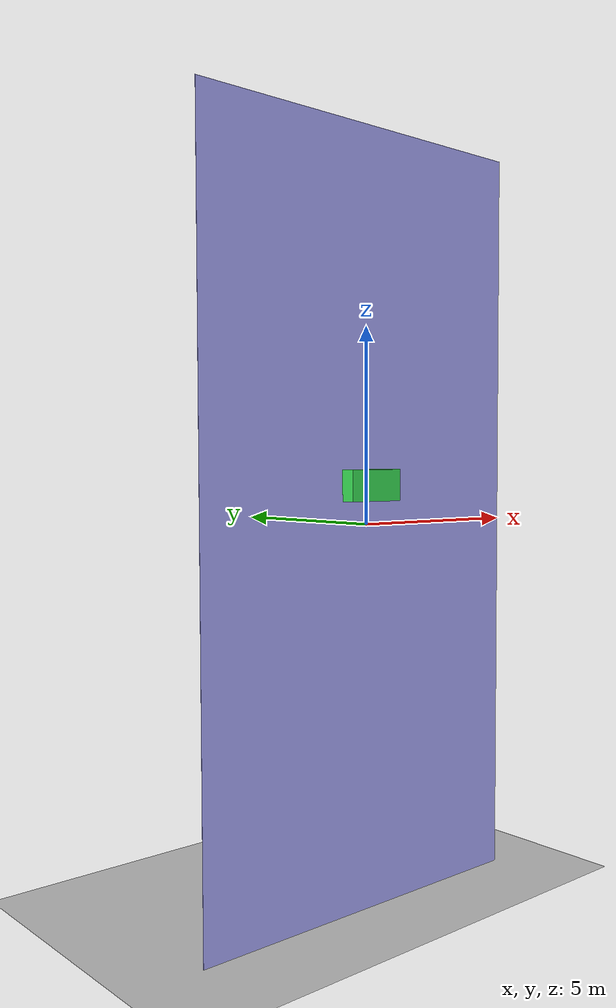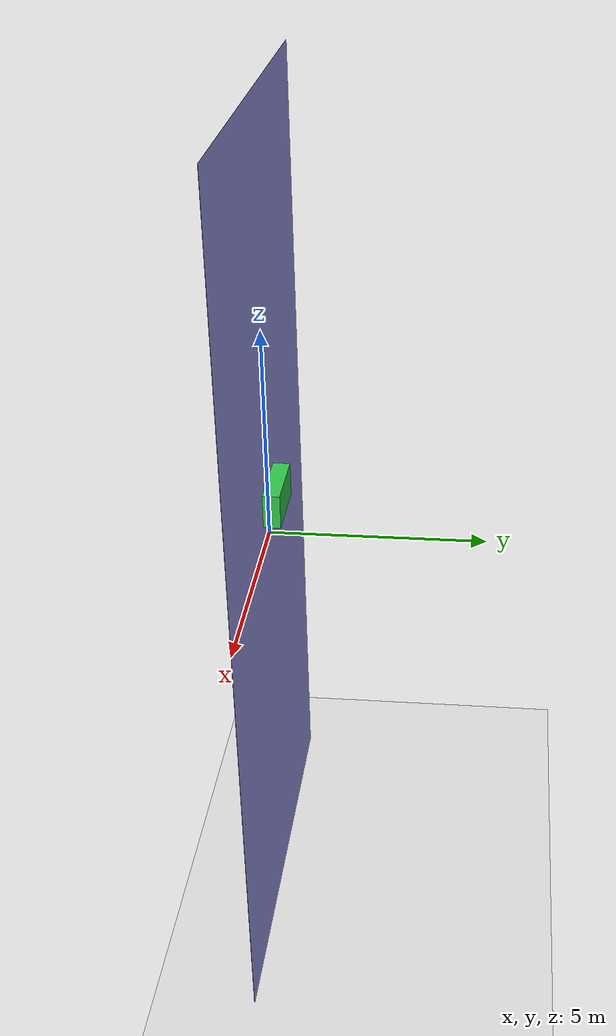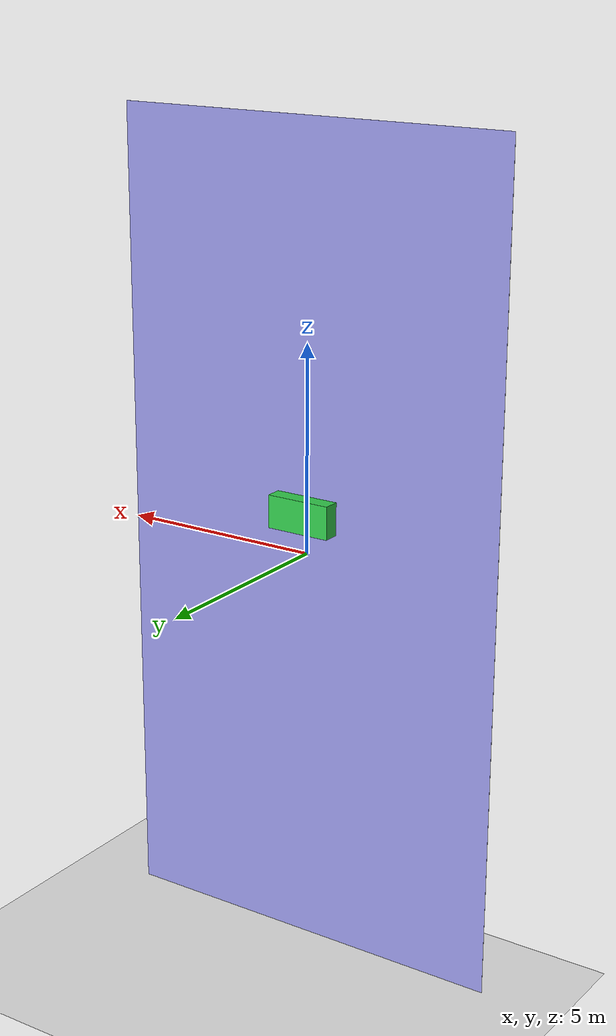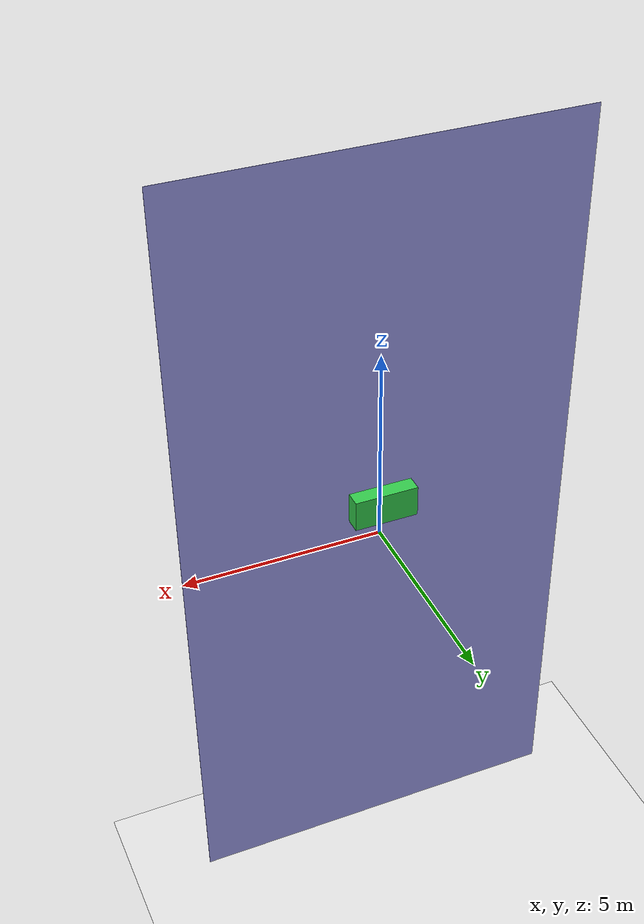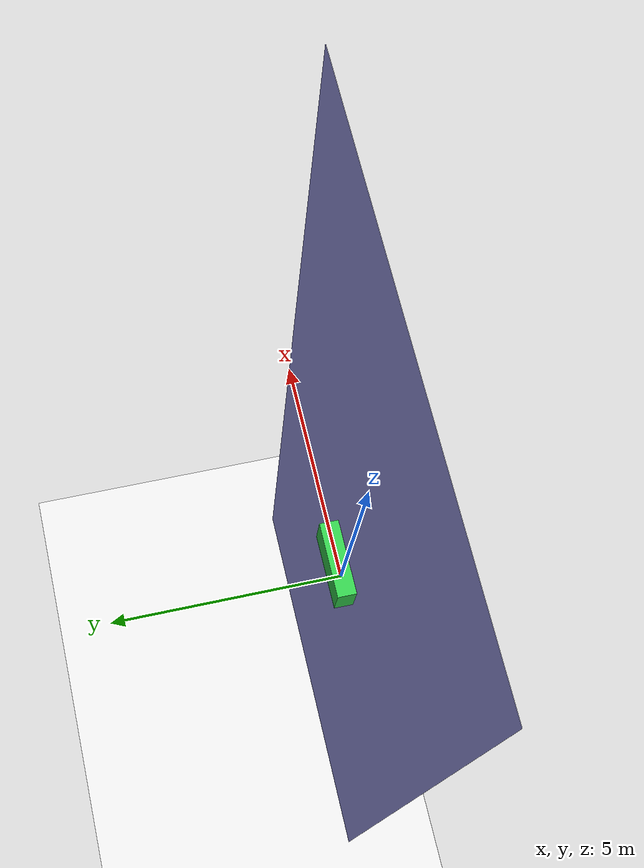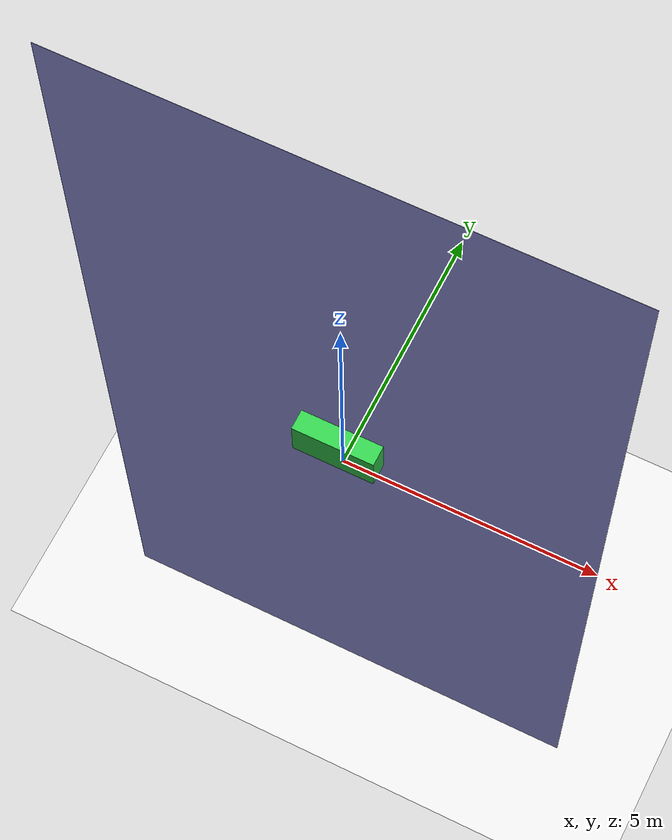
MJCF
<mujoco>
  <option gravity="0 0 -9.81"/>
  <worldbody>
    <body name="inclined_plane" pos="0 0 0">
      <geom type="plane" size="5 10 0.1" friction="0.3 0.3 0.3" rgba="0.6 0.6 0.9 1" quat="0.707 0.707 0 0"/>
    </body>
    <body name="surface" pos="-10 0 -10">
      <geom type="plane" size="25 25 0.1" rgba="0.9 0.9 0.9 1"/>
    </body>
    <body name="block" pos="0 0 1">
      <geom type="box" size="0.8 0.4 0.4" density="1" rgba="0.2 0.8 0.3 1"/>
      <joint type="free"/>
    </body>
  </worldbody>
</mujoco>
